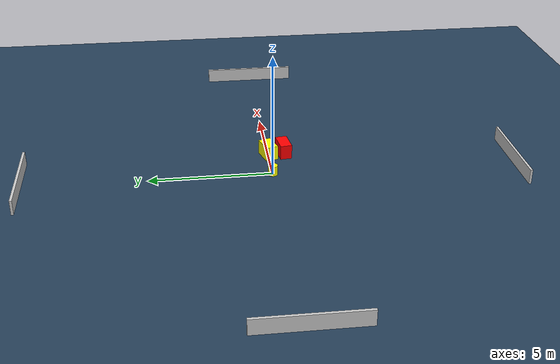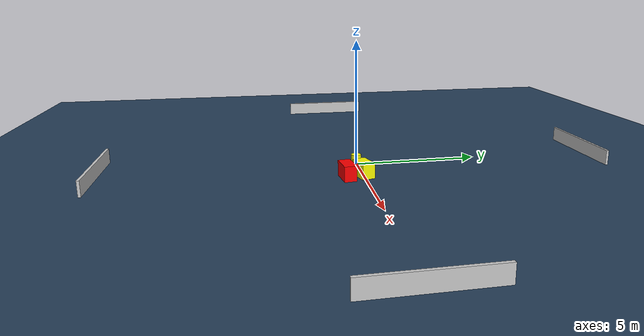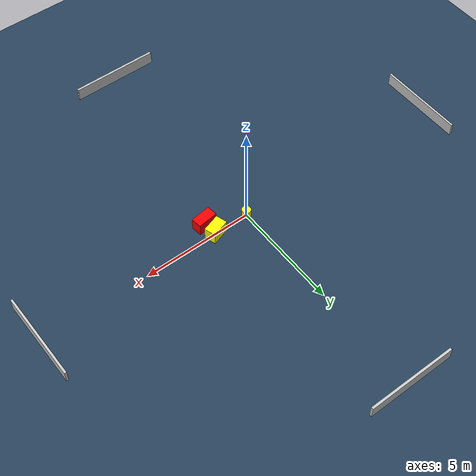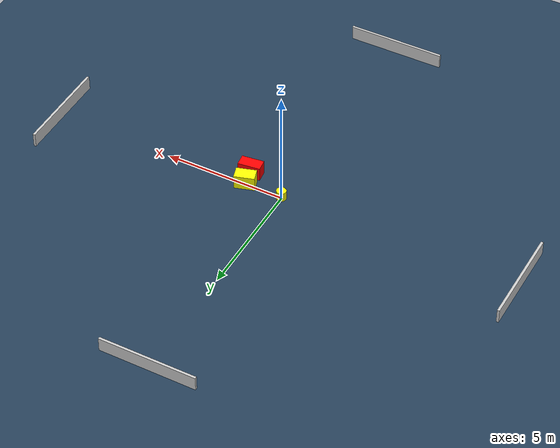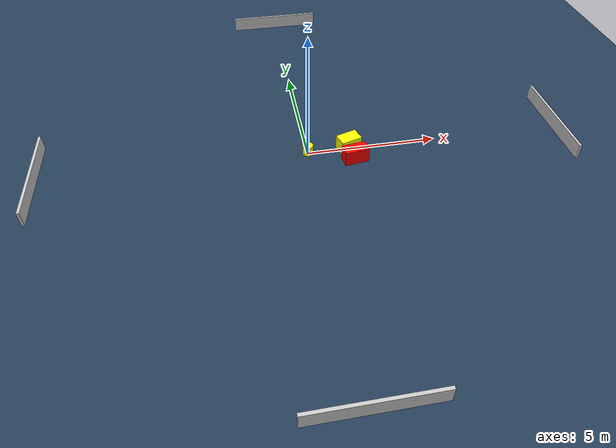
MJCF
<?xml version="1.0" ?>
<mujoco model="generated_environment">
  <option timestep="0.01" integrator="RK4" cone="elliptic"/>
  <default>
    <geom density="1"/>
  </default>
  <asset>
    <texture builtin="gradient" height="3072" name="skybox" rgb1="0.3 0.5 0.7" rgb2="0 0 0" type="skybox" width="512"/>
    <texture builtin="checker" height="300" name="groundplane" rgb1="0.2 0.3 0.4" rgb2="0.1 0.2 0.3" type="2d" width="300"/>
    <material name="groundplane" reflectance="0.2" texrepeat="5 5" texture="groundplane"/>
  </asset>
  <worldbody>
    <light dir="0 0 -1" directional="true" pos="0 0 1.5"/>
    <geom condim="3" friction="0.5 0.005 0.001" material="groundplane" name="floor" pos="0 0 0" size="0 0 0.05" type="plane"/>
    <body name="walls">
      <geom name="wall_1" condim="4" pos="-10.0 0.0 0.3" rgba="0.800000011920929 0.800000011920929 0.800000011920929 1.0" size="0.05 2.0 0.3" type="box"/>
      <geom name="wall_2" condim="4" pos="10.0 0.0 0.3" rgba="0.800000011920929 0.800000011920929 0.800000011920929 1.0" size="0.05 2.0 0.3" type="box"/>
      <geom name="wall_3" condim="4" pos="0.0 -10.0 0.3" rgba="0.800000011920929 0.800000011920929 0.800000011920929 1.0" size="2.0 0.05 0.3" type="box"/>
      <geom name="wall_4" condim="4" pos="0.0 10.0 0.3" rgba="0.800000011920929 0.800000011920929 0.800000011920929 1.0" size="2.0 0.05 0.3" type="box"/>
    </body>
    <body name="robot">
      <joint name="joint_x" type="slide" pos="0 0 0" axis="1 0 0"/>
      <joint name="joint_y" type="slide" pos="0 0 0" axis="0 1 0"/>
      <geom name="robot" type="cylinder" pos="0.0 0.0 0.2" size="0.2 0.2 0.0" mass="5.0" friction="1.0 0.005 0.0001" condim="4" rgba="1.0 1.0 0.0 1.0"/>
    </body>
    <body name="obstacle_1_movable">
      <geom name="obstacle_1_movable" condim="4" pos="1.587944637065834 -0.0037670301369631086 0.3" euler="0 0 197.1896207652584" friction="0.0 0.005 0.001" rgba="1.0 1.0 0.0 1.0" size="0.4146081405535061 0.26056167030971056 0.3" type="box" mass="0.1"/>
      <joint type="free"/>
    </body>
    <body name="obstacle_2_static">
      <geom name="obstacle_2_static" condim="4" pos="1.6991586643807914 -0.6552836522374671 0.3" euler="0 0 7.0292844762952456" friction="0.0 0.005 0.001" rgba="1.0 0.0 0.0 1.0" size="0.45827794299862 0.2403595529108907 0.3" type="box"/>
    </body>
  </worldbody>
  <actuator>
    <motor name="actuator_x" joint="joint_x" gear="1" ctrlrange="-1 1"/>
    <motor name="actuator_y" joint="joint_y" gear="1" ctrlrange="-1 1"/>
  </actuator>
</mujoco>
